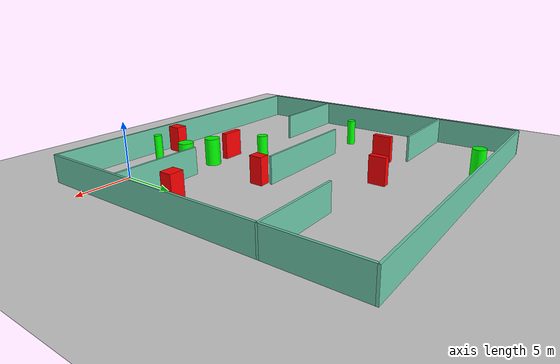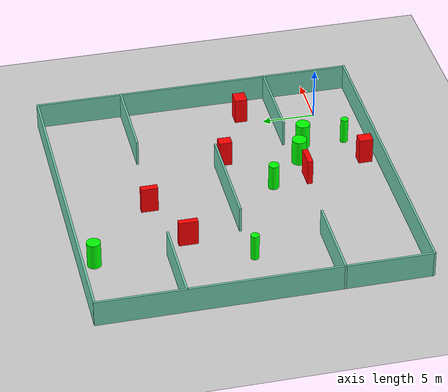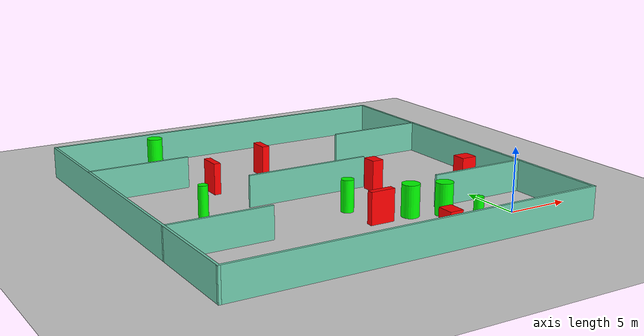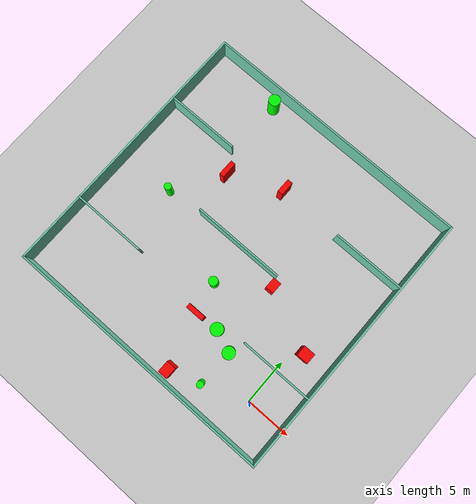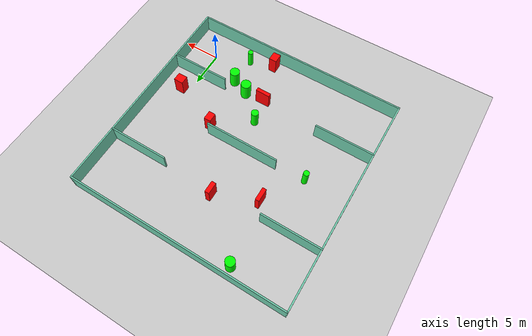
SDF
<sdf version="1.7">
 <world name="default">
  <light name="sun" type="directional">
   <pose>0 0 10 0 -0 0</pose>
   <diffuse>0.8 0.8 0.8 1</diffuse>
   <specular>0.2 0.2 0.2 1</specular>
   <attenuation>
    <range>1000</range>
    <constant>0.9</constant>
    <linear>0.01</linear>
    <quadratic>0.001</quadratic>
   </attenuation>
   <direction>-0.5 0.1 -0.9</direction>
   <spot><inner_angle>0</inner_angle><outer_angle>0</outer_angle><falloff>0</falloff></spot>
  </light>
  <model name="ground_plane">
   <static>1</static>
   <link name="link">
    <collision name="collision">
     <geometry><plane><normal>0 0 1</normal><size>100 100</size></plane></geometry>
     <surface>
      <contact><collide_bitmask>65535</collide_bitmask></contact>
      <friction><ode><mu>100</mu><mu2>50</mu2></ode></friction>
     </surface>
    </collision>
    <visual name="visual">
     <cast_shadows>0</cast_shadows>
     <geometry><plane><normal>0 0 1</normal><size>100 100</size></plane></geometry>
     <material>
      <script><uri>file://media/materials/scripts/gazebo.material</uri><name>Gazebo/Grey</name></script>
     </material>
    </visual>
   </link>
  </model>
  <gravity>0 0 -9.8</gravity>
  <magnetic_field>6e-06 2.3e-05 -4.2e-05</magnetic_field>
  <atmosphere type="adiabatic"/>
  <physics type="ode">
   <max_step_size>0.001</max_step_size>
   <real_time_factor>1</real_time_factor>
   <real_time_update_rate>1000</real_time_update_rate>
  </physics>
  <scene><ambient>0.4 0.4 0.4 1</ambient><background>0.7 0.7 0.7 1</background><shadows>1</shadows></scene>
  <spherical_coordinates>
   <surface_model>EARTH_WGS84</surface_model>
   <latitude_deg>0</latitude_deg>
   <longitude_deg>0</longitude_deg>
   <elevation>0</elevation>
   <heading_deg>0</heading_deg>
  </spherical_coordinates>
  <model name="my_base_walls">
   <link name="Wall_10">
    <collision name="Wall_10_Collision">
     <geometry><box><size>8.2 0.2 2.5</size></box></geometry>
     <pose>0 0 1.25 0 -0 0</pose>
    </collision>
    <visual name="Wall_10_Visual">
     <pose>0 0 1.25 0 -0 0</pose>
     <geometry><box><size>8.2 0.2 2.5</size></box></geometry>
     <material>
      <script><uri>file://media/materials/scripts/gazebo.material</uri><name>Gazebo/Grey</name></script>
      <ambient>0.435294 0.796078 0.67451 1</ambient>
     </material>
     <meta><layer>0</layer></meta>
    </visual>
    <pose>-11 -7 0 0 -0 0</pose>
   </link>
   <link name="Wall_12">
    <collision name="Wall_12_Collision">
     <geometry><box><size>8.2 0.2 2.5</size></box></geometry>
     <pose>0 0 1.25 0 -0 0</pose>
    </collision>
    <visual name="Wall_12_Visual">
     <pose>0 0 1.25 0 -0 0</pose>
     <geometry><box><size>8.2 0.2 2.5</size></box></geometry>
     <material>
      <script><uri>file://media/materials/scripts/gazebo.material</uri><name>Gazebo/Grey</name></script>
      <ambient>0.435294 0.796078 0.67451 1</ambient>
     </material>
     <meta><layer>0</layer></meta>
    </visual>
    <pose>-11 7 0 0 -0 0</pose>
   </link>
   <link name="Wall_14">
    <collision name="Wall_14_Collision">
     <geometry><box><size>8.2 0.2 2.5</size></box></geometry>
     <pose>0 0 1.25 0 -0 0</pose>
    </collision>
    <visual name="Wall_14_Visual">
     <pose>0 0 1.25 0 -0 0</pose>
     <geometry><box><size>8.2 0.2 2.5</size></box></geometry>
     <material>
      <script><uri>file://media/materials/scripts/gazebo.material</uri><name>Gazebo/Grey</name></script>
      <ambient>0.435294 0.796078 0.67451 1</ambient>
     </material>
     <meta><layer>0</layer></meta>
    </visual>
    <pose>11 7 0 0 -0 3.14159</pose>
   </link>
   <link name="Wall_16">
    <collision name="Wall_16_Collision">
     <geometry><box><size>10.2 0.2 2.5</size></box></geometry>
     <pose>0 0 1.25 0 -0 0</pose>
    </collision>
    <visual name="Wall_16_Visual">
     <pose>0 0 1.25 0 -0 0</pose>
     <geometry><box><size>10.2 0.2 2.5</size></box></geometry>
     <material>
      <script><uri>file://media/materials/scripts/gazebo.material</uri><name>Gazebo/Grey</name></script>
      <ambient>0.435294 0.796078 0.67451 1</ambient>
     </material>
     <meta><layer>0</layer></meta>
    </visual>
    <pose>0 0 0 0 -0 3.14159</pose>
   </link>
   <link name="Wall_2">
    <collision name="Wall_2_Collision">
     <geometry><box><size>30.2 0.2 2.5</size></box></geometry>
     <pose>0 0 1.25 0 -0 0</pose>
    </collision>
    <visual name="Wall_2_Visual">
     <pose>0 0 1.25 0 -0 0</pose>
     <geometry><box><size>30.2 0.2 2.5</size></box></geometry>
     <material>
      <script><uri>file://media/materials/scripts/gazebo.material</uri><name>Gazebo/Grey</name></script>
      <ambient>0.435294 0.796078 0.67451 1</ambient>
     </material>
     <meta><layer>0</layer></meta>
    </visual>
    <pose>0 -15 0 0 -0 3.14159</pose>
   </link>
   <link name="Wall_3">
    <collision name="Wall_3_Collision">
     <geometry><box><size>30.2 0.2 2.5</size></box></geometry>
     <pose>0 0 1.25 0 -0 0</pose>
    </collision>
    <visual name="Wall_3_Visual">
     <pose>0 0 1.25 0 -0 0</pose>
     <geometry><box><size>30.2 0.2 2.5</size></box></geometry>
     <material>
      <script><uri>file://media/materials/scripts/gazebo.material</uri><name>Gazebo/Grey</name></script>
      <ambient>0.435294 0.796078 0.67451 1</ambient>
     </material>
     <meta><layer>0</layer></meta>
    </visual>
    <pose>-15 0 0 0 -0 1.5708</pose>
   </link>
   <link name="Wall_4">
    <collision name="Wall_4_Collision">
     <geometry><box><size>30.2 0.2 2.5</size></box></geometry>
     <pose>0 0 1.25 0 -0 0</pose>
    </collision>
    <visual name="Wall_4_Visual">
     <pose>0 0 1.25 0 -0 0</pose>
     <geometry><box><size>30.2 0.2 2.5</size></box></geometry>
     <material>
      <script><uri>file://media/materials/scripts/gazebo.material</uri><name>Gazebo/Grey</name></script>
      <ambient>0.435294 0.796078 0.67451 1</ambient>
     </material>
     <meta><layer>0</layer></meta>
    </visual>
    <pose>0 15 0 0 -0 0</pose>
   </link>
   <link name="Wall_6">
    <collision name="Wall_6_Collision">
     <geometry><box><size>30.2 0.2 2.5</size></box></geometry>
     <pose>0 0 1.25 0 -0 0</pose>
    </collision>
    <visual name="Wall_6_Visual">
     <pose>0 0 1.25 0 -0 0</pose>
     <geometry><box><size>30.2 0.2 2.5</size></box></geometry>
     <material>
      <script><uri>file://media/materials/scripts/gazebo.material</uri><name>Gazebo/Grey</name></script>
      <ambient>0.435294 0.796078 0.67451 1</ambient>
     </material>
     <meta><layer>0</layer></meta>
    </visual>
    <pose>15 0 0 0 -0 1.5708</pose>
   </link>
   <link name="Wall_8">
    <collision name="Wall_8_Collision">
     <geometry><box><size>8.2 0.2 2.5</size></box></geometry>
     <pose>0 0 1.25 0 -0 0</pose>
    </collision>
    <visual name="Wall_8_Visual">
     <pose>0 0 1.25 0 -0 0</pose>
     <geometry><box><size>8.2 0.2 2.5</size></box></geometry>
     <material>
      <script><uri>file://media/materials/scripts/gazebo.material</uri><name>Gazebo/Grey</name></script>
      <ambient>0.435294 0.796078 0.67451 1</ambient>
     </material>
     <meta><layer>0</layer></meta>
    </visual>
    <pose>11 -7 0 0 -0 3.14159</pose>
   </link>
   <static>1</static>
   <pose>-11 11 0 0 -0 0</pose>
  </model>
  <model name="cylinder1">
   <static>1</static>
   <link name="link">
    <inertial>
     <mass>1</mass>
     <inertia><ixx>0.5</ixx><ixy>0</ixy><ixz>0</ixz><iyy>0.5</iyy><iyz>0</iyz><izz>1</izz></inertia>
    </inertial>
    <collision name="collision">
     <geometry><cylinder><radius>0.6299006797038735</radius><length>2.5</length></cylinder></geometry>
    </collision>
    <visual name="visual">
     <geometry><cylinder><radius>0.6299006797038735</radius><length>2.5</length></cylinder></geometry>
     <material>
      <ambient>0 1 0 1</ambient>
      <diffuse>0 1 0 1</diffuse>
      <specular>0.1 0.1 0.1 1</specular>
      <emissive>0 0 0 0</emissive>
     </material>
    </visual>
   </link>
   <pose>-17.920951811758755 24.60420217926336 1.25 0 0 0</pose>
  </model>
  <model name="cylinder2">
   <static>1</static>
   <link name="link">
    <inertial>
     <mass>1</mass>
     <inertia><ixx>0.5</ixx><ixy>0</ixy><ixz>0</ixz><iyy>0.5</iyy><iyz>0</iyz><izz>1</izz></inertia>
    </inertial>
    <collision name="collision">
     <geometry><cylinder><radius>0.361145441916183</radius><length>2.5</length></cylinder></geometry>
    </collision>
    <visual name="visual">
     <geometry><cylinder><radius>0.361145441916183</radius><length>2.5</length></cylinder></geometry>
     <material>
      <ambient>0 1 0 1</ambient>
      <diffuse>0 1 0 1</diffuse>
      <specular>0.1 0.1 0.1 1</specular>
      <emissive>0 0 0 0</emissive>
     </material>
    </visual>
   </link>
   <pose>-4.700672046194159 -1.7171382457126465 1.25 0 0 0</pose>
  </model>
  <model name="cylinder3">
   <static>1</static>
   <link name="link">
    <inertial>
     <mass>1</mass>
     <inertia><ixx>0.5</ixx><ixy>0</ixy><ixz>0</ixz><iyy>0.5</iyy><iyz>0</iyz><izz>1</izz></inertia>
    </inertial>
    <collision name="collision">
     <geometry><cylinder><radius>0.38464584903428123</radius><length>2.5</length></cylinder></geometry>
    </collision>
    <visual name="visual">
     <geometry><cylinder><radius>0.38464584903428123</radius><length>2.5</length></cylinder></geometry>
     <material>
      <ambient>0 1 0 1</ambient>
      <diffuse>0 1 0 1</diffuse>
      <specular>0.1 0.1 0.1 1</specular>
      <emissive>0 0 0 0</emissive>
     </material>
    </visual>
   </link>
   <pose>-20.073715148498835 10.614492357046988 1.25 0 0 0</pose>
  </model>
  <model name="cylinder4">
   <static>1</static>
   <link name="link">
    <inertial>
     <mass>1</mass>
     <inertia><ixx>0.5</ixx><ixy>0</ixy><ixz>0</ixz><iyy>0.5</iyy><iyz>0</iyz><izz>1</izz></inertia>
    </inertial>
    <collision name="collision">
     <geometry><cylinder><radius>0.6680140866326715</radius><length>2.5</length></cylinder></geometry>
    </collision>
    <visual name="visual">
     <geometry><cylinder><radius>0.6680140866326715</radius><length>2.5</length></cylinder></geometry>
     <material>
      <ambient>0 1 0 1</ambient>
      <diffuse>0 1 0 1</diffuse>
      <specular>0.1 0.1 0.1 1</specular>
      <emissive>0 0 0 0</emissive>
     </material>
    </visual>
   </link>
   <pose>-4.597149806612112 2.2907064474742773 1.25 0 0 0</pose>
  </model>
  <model name="cylinder5">
   <static>1</static>
   <link name="link">
    <inertial>
     <mass>1</mass>
     <inertia><ixx>0.5</ixx><ixy>0</ixy><ixz>0</ixz><iyy>0.5</iyy><iyz>0</iyz><izz>1</izz></inertia>
    </inertial>
    <collision name="collision">
     <geometry><cylinder><radius>0.49189580857448034</radius><length>2.5</length></cylinder></geometry>
    </collision>
    <visual name="visual">
     <geometry><cylinder><radius>0.49189580857448034</radius><length>2.5</length></cylinder></geometry>
     <material>
      <ambient>0 1 0 1</ambient>
      <diffuse>0 1 0 1</diffuse>
      <specular>0.1 0.1 0.1 1</specular>
      <emissive>0 0 0 0</emissive>
     </material>
    </visual>
   </link>
   <pose>-10.304030855698059 6.492821169107685 1.25 0 0 0</pose>
  </model>
  <model name="cylinder6">
   <static>1</static>
   <link name="link">
    <inertial>
     <mass>1</mass>
     <inertia><ixx>0.5</ixx><ixy>0</ixy><ixz>0</ixz><iyy>0.5</iyy><iyz>0</iyz><izz>1</izz></inertia>
    </inertial>
    <collision name="collision">
     <geometry><cylinder><radius>0.6896905807239335</radius><length>2.5</length></cylinder></geometry>
    </collision>
    <visual name="visual">
     <geometry><cylinder><radius>0.6896905807239335</radius><length>2.5</length></cylinder></geometry>
     <material>
      <ambient>0 1 0 1</ambient>
      <diffuse>0 1 0 1</diffuse>
      <specular>0.1 0.1 0.1 1</specular>
      <emissive>0 0 0 0</emissive>
     </material>
    </visual>
   </link>
   <pose>-6.945546715461138 3.225874947363736 1.25 0 0 0</pose>
  </model>
  <model name="box1">
   <static>1</static>
   <link name="link">
    <inertial>
     <mass>1</mass>
     <inertia><ixx>0.083</ixx><ixy>0</ixy><ixz>0</ixz><iyy>0.083</iyy><iyz>0</iyz><izz>0.083</izz></inertia>
    </inertial>
    <collision name="collision">
     <geometry><box><size>1.9817951822672502 0.5167188168565822 2.5</size></box></geometry>
    </collision>
    <visual name="visual">
     <geometry><box><size>1.9817951822672502 0.5167188168565822 2.5</size></box></geometry>
     <material>
      <ambient>1 0 0 1</ambient>
      <diffuse>1 0 0 1</diffuse>
      <specular>0.1 0.1 0.1 1</specular>
      <emissive>0 0 0 0</emissive>
     </material>
    </visual>
    <sensor name="my_contact" type="contact">
     <contact><collision>box_collision</collision><topic>__default_topic__</topic></contact>
    </sensor>
   </link>
   <pose>-9.610178889873605 3.1192274884715765 1.25 0 0 0</pose>
  </model>
  <model name="box2">
   <static>1</static>
   <link name="link">
    <inertial>
     <mass>1</mass>
     <inertia><ixx>0.083</ixx><ixy>0</ixy><ixz>0</ixz><iyy>0.083</iyy><iyz>0</iyz><izz>0.083</izz></inertia>
    </inertial>
    <collision name="collision">
     <geometry><box><size>0.5401351179113881 1.7808267121849903 2.5</size></box></geometry>
    </collision>
    <visual name="visual">
     <geometry><box><size>0.5401351179113881 1.7808267121849903 2.5</size></box></geometry>
     <material>
      <ambient>1 0 0 1</ambient>
      <diffuse>1 0 0 1</diffuse>
      <specular>0.1 0.1 0.1 1</specular>
      <emissive>0 0 0 0</emissive>
     </material>
    </visual>
    <sensor name="my_contact" type="contact">
     <contact><collision>box_collision</collision><topic>__default_topic__</topic></contact>
    </sensor>
   </link>
   <pose>-16.756683976525295 15.918653666326549 1.25 0 0 0</pose>
  </model>
  <model name="box3">
   <static>1</static>
   <link name="link">
    <inertial>
     <mass>1</mass>
     <inertia><ixx>0.083</ixx><ixy>0</ixy><ixz>0</ixz><iyy>0.083</iyy><iyz>0</iyz><izz>0.083</izz></inertia>
    </inertial>
    <collision name="collision">
     <geometry><box><size>1.060229769807144 1.2990500911524885 2.5</size></box></geometry>
    </collision>
    <visual name="visual">
     <geometry><box><size>1.060229769807144 1.2990500911524885 2.5</size></box></geometry>
     <material>
      <ambient>1 0 0 1</ambient>
      <diffuse>1 0 0 1</diffuse>
      <specular>0.1 0.1 0.1 1</specular>
      <emissive>0 0 0 0</emissive>
     </material>
    </visual>
    <sensor name="my_contact" type="contact">
     <contact><collision>box_collision</collision><topic>__default_topic__</topic></contact>
    </sensor>
   </link>
   <pose>-8.000017176506617 -2.778268593494135 1.25 0 0 0</pose>
  </model>
  <model name="box4">
   <static>1</static>
   <link name="link">
    <inertial>
     <mass>1</mass>
     <inertia><ixx>0.083</ixx><ixy>0</ixy><ixz>0</ixz><iyy>0.083</iyy><iyz>0</iyz><izz>0.083</izz></inertia>
    </inertial>
    <collision name="collision">
     <geometry><box><size>1.2868732139648573 1.1588494184497482 2.5</size></box></geometry>
    </collision>
    <visual name="visual">
     <geometry><box><size>1.2868732139648573 1.1588494184497482 2.5</size></box></geometry>
     <material>
      <ambient>1 0 0 1</ambient>
      <diffuse>1 0 0 1</diffuse>
      <specular>0.1 0.1 0.1 1</specular>
      <emissive>0 0 0 0</emissive>
     </material>
    </visual>
    <sensor name="my_contact" type="contact">
     <contact><collision>box_collision</collision><topic>__default_topic__</topic></contact>
    </sensor>
   </link>
   <pose>1.0904519374058914 7.035448886458619 1.25 0 0 0</pose>
  </model>
  <model name="box5">
   <static>1</static>
   <link name="link">
    <inertial>
     <mass>1</mass>
     <inertia><ixx>0.083</ixx><ixy>0</ixy><ixz>0</ixz><iyy>0.083</iyy><iyz>0</iyz><izz>0.083</izz></inertia>
    </inertial>
    <collision name="collision">
     <geometry><box><size>0.938268387447267 1.219264758637065 2.5</size></box></geometry>
    </collision>
    <visual name="visual">
     <geometry><box><size>0.938268387447267 1.219264758637065 2.5</size></box></geometry>
     <material>
      <ambient>1 0 0 1</ambient>
      <diffuse>1 0 0 1</diffuse>
      <specular>0.1 0.1 0.1 1</specular>
      <emissive>0 0 0 0</emissive>
     </material>
    </visual>
    <sensor name="my_contact" type="contact">
     <contact><collision>box_collision</collision><topic>__default_topic__</topic></contact>
    </sensor>
   </link>
   <pose>-5.585923023281005 10.022512496390238 1.25 0 0 0</pose>
  </model>
  <model name="box6">
   <static>1</static>
   <link name="link">
    <inertial>
     <mass>1</mass>
     <inertia><ixx>0.083</ixx><ixy>0</ixy><ixz>0</ixz><iyy>0.083</iyy><iyz>0</iyz><izz>0.083</izz></inertia>
    </inertial>
    <collision name="collision">
     <geometry><box><size>0.6066010120177883 1.5690401770012867 2.5</size></box></geometry>
    </collision>
    <visual name="visual">
     <geometry><box><size>0.6066010120177883 1.5690401770012867 2.5</size></box></geometry>
     <material>
      <ambient>1 0 0 1</ambient>
      <diffuse>1 0 0 1</diffuse>
      <specular>0.1 0.1 0.1 1</specular>
      <emissive>0 0 0 0</emissive>
     </material>
    </visual>
    <sensor name="my_contact" type="contact">
     <contact><collision>box_collision</collision><topic>__default_topic__</topic></contact>
    </sensor>
   </link>
   <pose>-11.142368092373758 18.307383066360597 1.25 0 0 0</pose>
  </model>
 </world>
</sdf>
